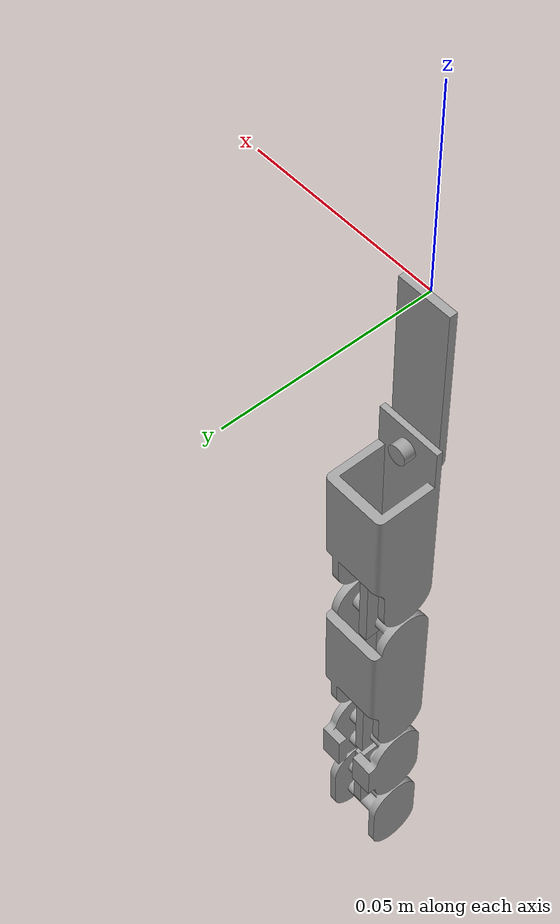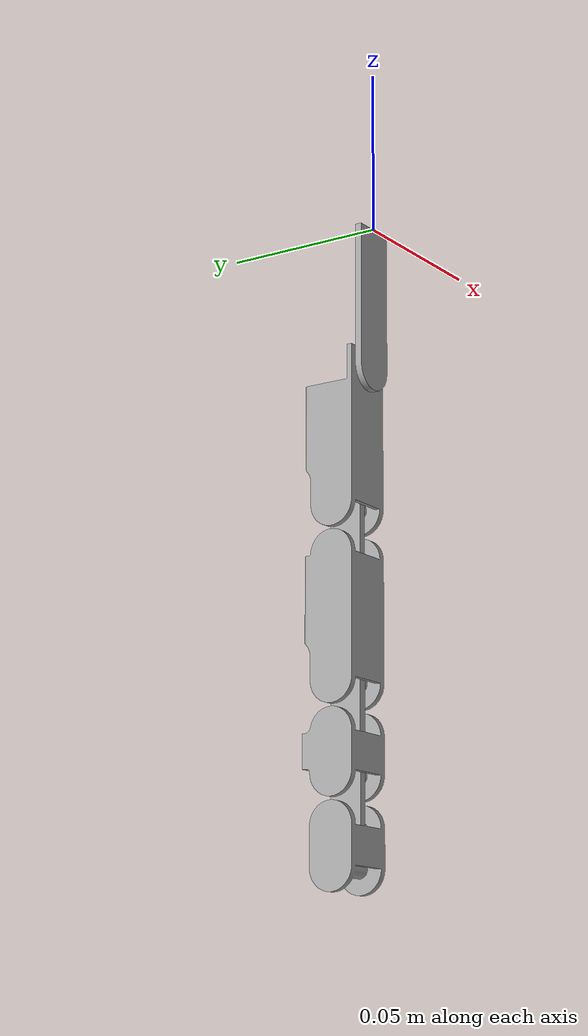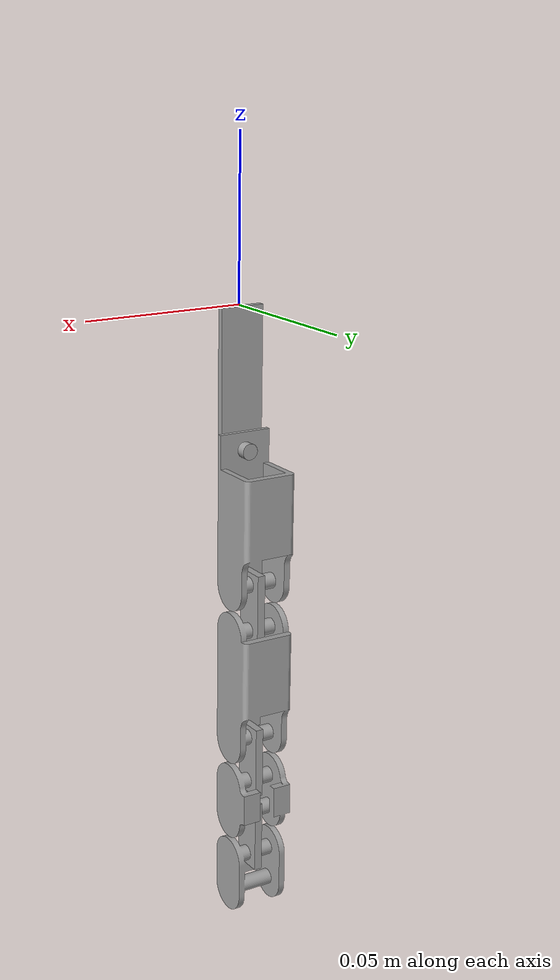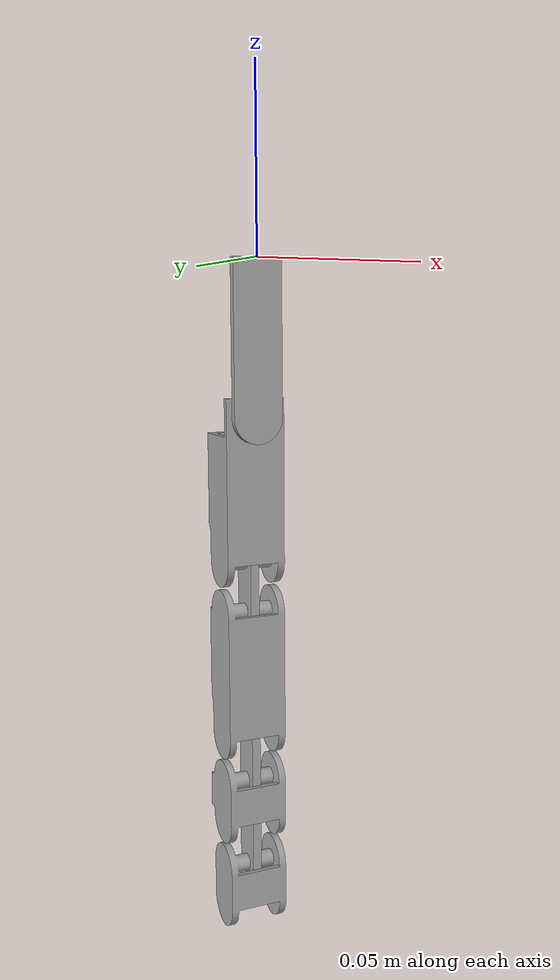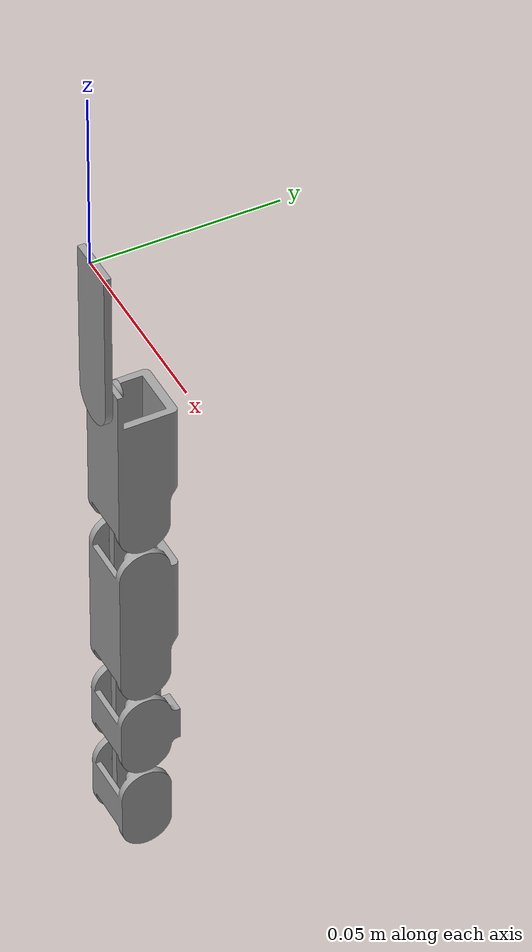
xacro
<?xml version="1.0" ?>
<robot name="new_finger" xmlns:xacro="http://www.ros.org/wiki/xacro">

<xacro:include filename="$(find new_finger_description)/urdf/materials.xacro" />
<xacro:include filename="$(find new_finger_description)/urdf/new_finger.trans" />
<xacro:include filename="$(find new_finger_description)/urdf/new_finger.gazebo" />
<link name="base_link">
  <inertial>
    <origin rpy="0 0 0" xyz="-3.172582489701302e-14 0.0012359787607253243 -0.025536609468604348"/>
    <mass value="0.011430485562037091"/>
    <inertia ixx="2e-06" ixy="0.0" ixz="-0.0" iyy="3e-06" iyz="0.0" izz="0.0"/>
  </inertial>
  <visual>
    <origin rpy="0 0 0" xyz="0 0 0"/>
    <geometry>
      <mesh filename="package://new_finger_description/meshes/base_link.stl" scale="0.001 0.001 0.001"/>
    </geometry>
    <material name="steel_satin"/>
  </visual>
  <collision>
    <origin rpy="0 0 0" xyz="0 0 0"/>
    <geometry>
      <mesh filename="package://new_finger_description/meshes/base_link.stl" scale="0.001 0.001 0.001"/>
    </geometry>
  </collision>
</link>

<link name="mcp_pitch_link_v1_1">
  <inertial>
    <origin rpy="0 0 0" xyz="-3.3123220041354627e-15 0.008094259781153353 -0.023280808426458743"/>
    <mass value="0.03649234719314178"/>
    <inertia ixx="7e-06" ixy="-0.0" ixz="0.0" iyy="7e-06" iyz="-0.0" izz="3e-06"/>
  </inertial>
  <visual>
    <origin rpy="0 0 0" xyz="-0.0 -0.002 0.043"/>
    <geometry>
      <mesh filename="package://new_finger_description/meshes/mcp_pitch_link_v1_1.stl" scale="0.001 0.001 0.001"/>
    </geometry>
    <material name="steel_satin"/>
  </visual>
  <collision>
    <origin rpy="0 0 0" xyz="-0.0 -0.002 0.043"/>
    <geometry>
      <mesh filename="package://new_finger_description/meshes/mcp_pitch_link_v1_1.stl" scale="0.001 0.001 0.001"/>
    </geometry>
  </collision>
</link>

<link name="connector_1_v1_1">
  <inertial>
    <origin rpy="0 0 0" xyz="0.000249999999999998 0.0 -0.0074999999701438474"/>
    <mass value="0.00374307805216622"/>
    <inertia ixx="0.0" ixy="0.0" ixz="-0.0" iyy="0.0" iyz="-0.0" izz="0.0"/>
  </inertial>
  <visual>
    <origin rpy="0 0 0" xyz="0.0 -0.0095 0.084"/>
    <geometry>
      <mesh filename="package://new_finger_description/meshes/connector_1_v1_1.stl" scale="0.001 0.001 0.001"/>
    </geometry>
    <material name="steel_satin"/>
  </visual>
  <collision>
    <origin rpy="0 0 0" xyz="0.0 -0.0095 0.084"/>
    <geometry>
      <mesh filename="package://new_finger_description/meshes/connector_1_v1_1.stl" scale="0.001 0.001 0.001"/>
    </geometry>
  </collision>
</link>

<link name="pip_pitch_link_v1_1">
  <inertial>
    <origin rpy="0 0 0" xyz="-0.0014999999999999935 0.0008416136964378776 -0.016889258448993236"/>
    <mass value="0.039658823128533346"/>
    <inertia ixx="8e-06" ixy="-0.0" ixz="-0.0" iyy="8e-06" iyz="-0.0" izz="3e-06"/>
  </inertial>
  <visual>
    <origin rpy="0 0 0" xyz="-0.0015 -0.0095 0.099"/>
    <geometry>
      <mesh filename="package://new_finger_description/meshes/pip_pitch_link_v1_1.stl" scale="0.001 0.001 0.001"/>
    </geometry>
    <material name="steel_satin"/>
  </visual>
  <collision>
    <origin rpy="0 0 0" xyz="-0.0015 -0.0095 0.099"/>
    <geometry>
      <mesh filename="package://new_finger_description/meshes/pip_pitch_link_v1_1.stl" scale="0.001 0.001 0.001"/>
    </geometry>
  </collision>
</link>

<link name="connector_2_v1_1">
  <inertial>
    <origin rpy="0 0 0" xyz="0.00025000000000000575 -5.204170427930421e-18 -0.007499999970143806"/>
    <mass value="0.00374307805216622"/>
    <inertia ixx="0.0" ixy="-0.0" ixz="0.0" iyy="0.0" iyz="-0.0" izz="0.0"/>
  </inertial>
  <visual>
    <origin rpy="0 0 0" xyz="-0.0 -0.0095 0.135"/>
    <geometry>
      <mesh filename="package://new_finger_description/meshes/connector_2_v1_1.stl" scale="0.001 0.001 0.001"/>
    </geometry>
    <material name="steel_satin"/>
  </visual>
  <collision>
    <origin rpy="0 0 0" xyz="-0.0 -0.0095 0.135"/>
    <geometry>
      <mesh filename="package://new_finger_description/meshes/connector_2_v1_1.stl" scale="0.001 0.001 0.001"/>
    </geometry>
  </collision>
</link>

<link name="dip_link_v1_1">
  <inertial>
    <origin rpy="0 0 0" xyz="-0.0014968692593847616 0.00048340360385456214 -0.00543640255956615"/>
    <mass value="0.018983457271726564"/>
    <inertia ixx="1e-06" ixy="-0.0" ixz="0.0" iyy="1e-06" iyz="-0.0" izz="1e-06"/>
  </inertial>
  <visual>
    <origin rpy="0 0 0" xyz="-0.0015 -0.0095 0.15"/>
    <geometry>
      <mesh filename="package://new_finger_description/meshes/dip_link_v1_1.stl" scale="0.001 0.001 0.001"/>
    </geometry>
    <material name="steel_satin"/>
  </visual>
  <collision>
    <origin rpy="0 0 0" xyz="-0.0015 -0.0095 0.15"/>
    <geometry>
      <mesh filename="package://new_finger_description/meshes/dip_link_v1_1.stl" scale="0.001 0.001 0.001"/>
    </geometry>
  </collision>
</link>

<link name="connector_3_v1_1">
  <inertial>
    <origin rpy="0 0 0" xyz="0.00025000000000004603 -8.673617379884035e-18 -0.007499999970143834"/>
    <mass value="0.00374307805216622"/>
    <inertia ixx="0.0" ixy="-0.0" ixz="-0.0" iyy="0.0" iyz="0.0" izz="0.0"/>
  </inertial>
  <visual>
    <origin rpy="0 0 0" xyz="-0.0 -0.0095 0.161"/>
    <geometry>
      <mesh filename="package://new_finger_description/meshes/connector_3_v1_1.stl" scale="0.001 0.001 0.001"/>
    </geometry>
    <material name="steel_satin"/>
  </visual>
  <collision>
    <origin rpy="0 0 0" xyz="-0.0 -0.0095 0.161"/>
    <geometry>
      <mesh filename="package://new_finger_description/meshes/connector_3_v1_1.stl" scale="0.001 0.001 0.001"/>
    </geometry>
  </collision>
</link>

<link name="tip_link_v1_1">
  <inertial>
    <origin rpy="0 0 0" xyz="-0.0015000228538777308 -0.0006333260004305636 -0.0055000162640794215"/>
    <mass value="0.0165936992661325"/>
    <inertia ixx="1e-06" ixy="0.0" ixz="-0.0" iyy="1e-06" iyz="0.0" izz="1e-06"/>
  </inertial>
  <visual>
    <origin rpy="0 0 0" xyz="-0.0015 -0.0095 0.176"/>
    <geometry>
      <mesh filename="package://new_finger_description/meshes/tip_link_v1_1.stl" scale="0.001 0.001 0.001"/>
    </geometry>
    <material name="steel_satin"/>
  </visual>
  <collision>
    <origin rpy="0 0 0" xyz="-0.0015 -0.0095 0.176"/>
    <geometry>
      <mesh filename="package://new_finger_description/meshes/tip_link_v1_1.stl" scale="0.001 0.001 0.001"/>
    </geometry>
  </collision>
</link>

<joint name="mcp_yaw" type="continuous">
  <origin rpy="0 0 0" xyz="0.0 0.002 -0.043"/>
  <parent link="base_link"/>
  <child link="mcp_pitch_link_v1_1"/>
  <axis xyz="0.0 1.0 0.0"/>
</joint>

<joint name="mcp_pitch" type="continuous">
  <origin rpy="0 0 0" xyz="-0.0 0.0075 -0.041"/>
  <parent link="mcp_pitch_link_v1_1"/>
  <child link="connector_1_v1_1"/>
  <axis xyz="-1.0 0.0 0.0"/>
</joint>

<joint name="Rigid3" type="fixed">
  <origin rpy="0 0 0" xyz="0.0015 0.0 -0.015"/>
  <parent link="connector_1_v1_1"/>
  <child link="pip_pitch_link_v1_1"/>
</joint>

<joint name="pip_pitch" type="continuous">
  <origin rpy="0 0 0" xyz="-0.0015 0.0 -0.036"/>
  <parent link="pip_pitch_link_v1_1"/>
  <child link="connector_2_v1_1"/>
  <axis xyz="-1.0 0.0 -0.0"/>
</joint>

<joint name="Rigid5" type="fixed">
  <origin rpy="0 0 0" xyz="0.0015 0.0 -0.015"/>
  <parent link="connector_2_v1_1"/>
  <child link="dip_link_v1_1"/>
</joint>

<joint name="dip_pitch" type="continuous">
  <origin rpy="0 0 0" xyz="-0.0015 0.0 -0.011"/>
  <parent link="dip_link_v1_1"/>
  <child link="connector_3_v1_1"/>
  <axis xyz="-1.0 0.0 -0.0"/>
</joint>

<joint name="Rigid7" type="fixed">
  <origin rpy="0 0 0" xyz="0.0015 0.0 -0.015"/>
  <parent link="connector_3_v1_1"/>
  <child link="tip_link_v1_1"/>
</joint>

</robot>

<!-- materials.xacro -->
<robot name="new_finger" xmlns:xacro="http://www.ros.org/wiki/xacro" >

<material name="silver_default">
  <color rgba="0.700 0.700 0.700 1.000"/>
</material>
<material name="steel_satin">
  <color rgba="0.6274509803921569 0.6274509803921569 0.6274509803921569 1.0"/>
</material>

</robot>

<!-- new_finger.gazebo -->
<robot name="new_finger" xmlns:xacro="http://www.ros.org/wiki/xacro" >

<xacro:property name="body_color" value="Gazebo/Silver" />

<gazebo>
  <plugin filename="libgazebo_ros_control.so" name="control"/>
</gazebo>
<gazebo reference="base_link">
  <material>${body_color}</material>
  <mu1>0.2</mu1>
  <mu2>0.2</mu2>
  <selfCollide>true</selfCollide>
  <gravity>true</gravity>
</gazebo>

<gazebo reference="mcp_pitch_link_v1_1">
  <material>${body_color}</material>
  <mu1>0.2</mu1>
  <mu2>0.2</mu2>
  <selfCollide>true</selfCollide>
</gazebo>

<gazebo reference="connector_1_v1_1">
  <material>${body_color}</material>
  <mu1>0.2</mu1>
  <mu2>0.2</mu2>
  <selfCollide>true</selfCollide>
</gazebo>

<gazebo reference="pip_pitch_link_v1_1">
  <material>${body_color}</material>
  <mu1>0.2</mu1>
  <mu2>0.2</mu2>
  <selfCollide>true</selfCollide>
</gazebo>

<gazebo reference="connector_2_v1_1">
  <material>${body_color}</material>
  <mu1>0.2</mu1>
  <mu2>0.2</mu2>
  <selfCollide>true</selfCollide>
</gazebo>

<gazebo reference="dip_link_v1_1">
  <material>${body_color}</material>
  <mu1>0.2</mu1>
  <mu2>0.2</mu2>
  <selfCollide>true</selfCollide>
</gazebo>

<gazebo reference="connector_3_v1_1">
  <material>${body_color}</material>
  <mu1>0.2</mu1>
  <mu2>0.2</mu2>
  <selfCollide>true</selfCollide>
</gazebo>

<gazebo reference="tip_link_v1_1">
  <material>${body_color}</material>
  <mu1>0.2</mu1>
  <mu2>0.2</mu2>
  <selfCollide>true</selfCollide>
</gazebo>

</robot>
